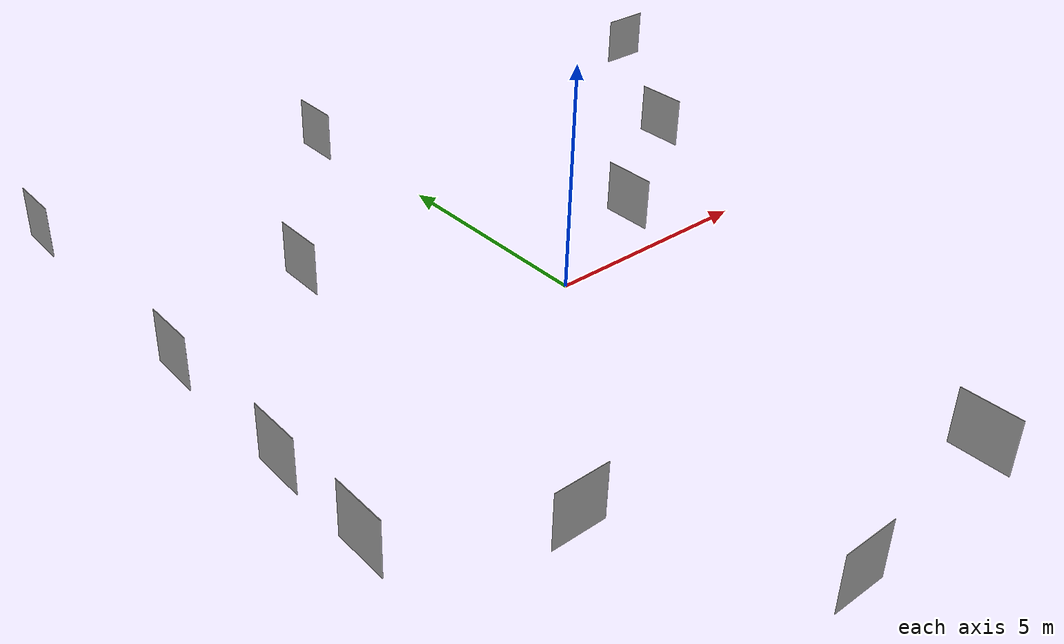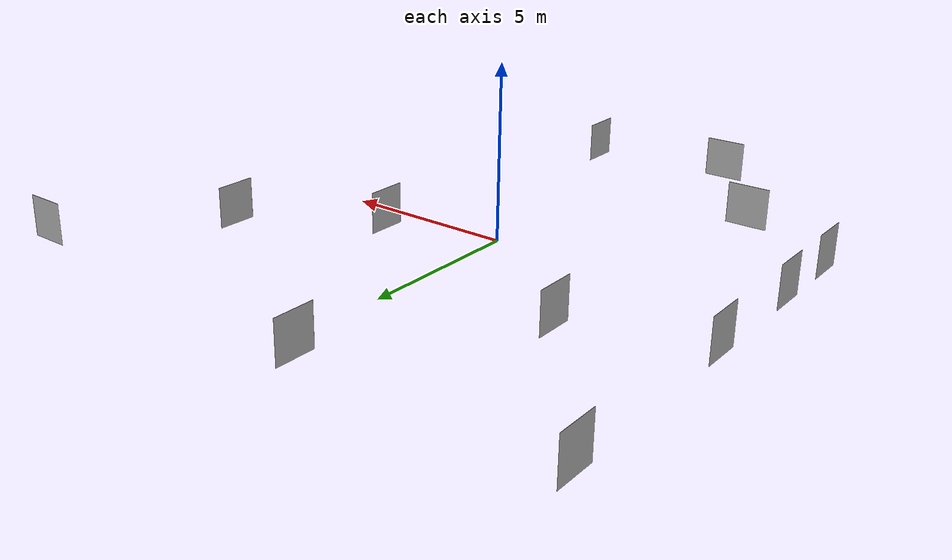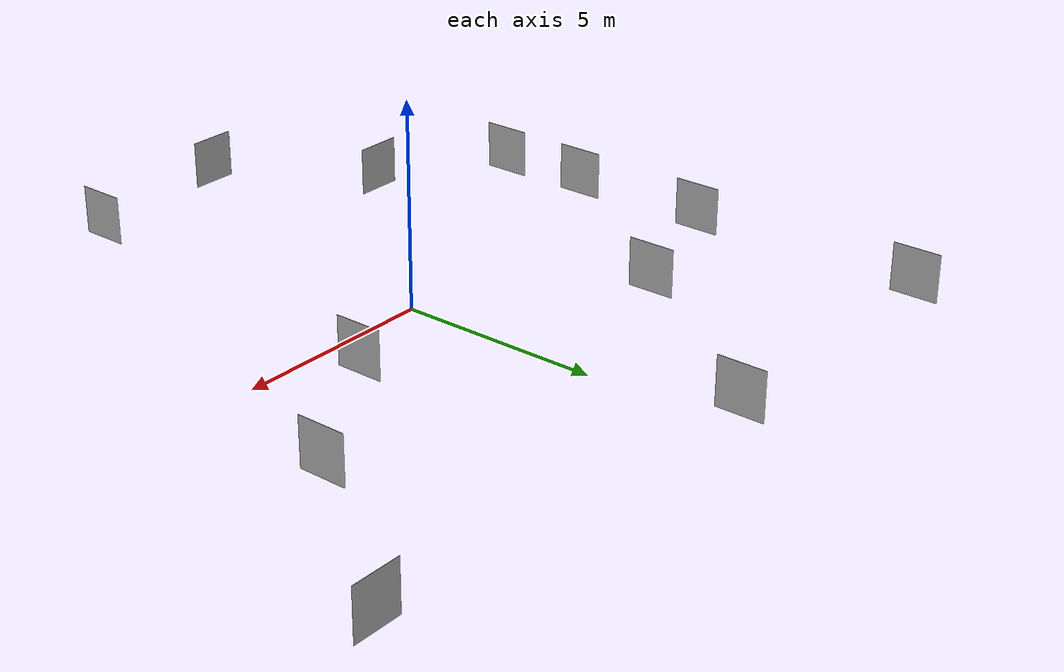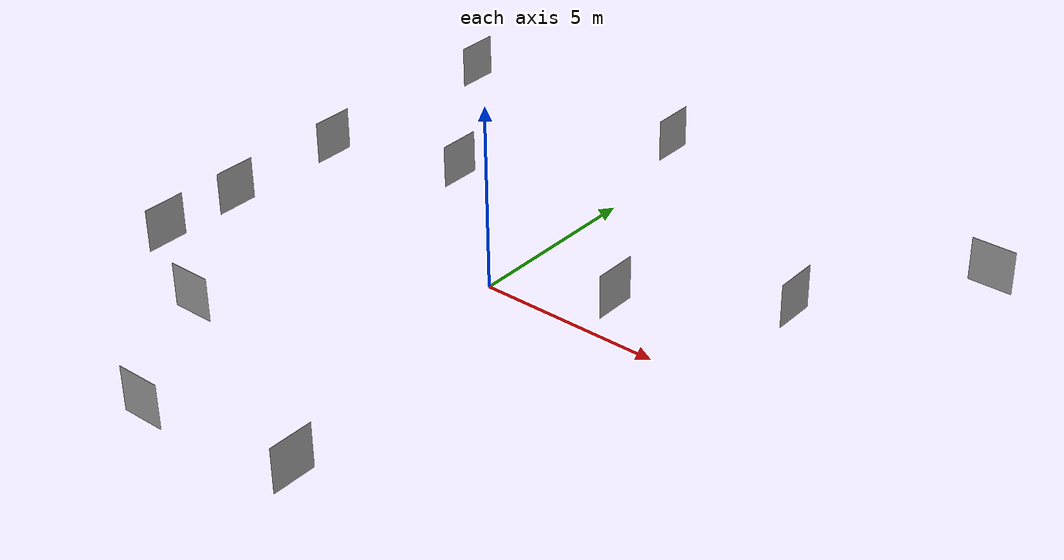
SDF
<sdf version="1.4">
 <world name="default">
  <scene><ambient>0.5 0.5 0.5 1</ambient><background>0.5 0.5 0.5 1</background><shadows>false</shadows></scene>
  <physics type="ode">
   <gravity>0 0 -9.81</gravity>
   <ode>
    <solver><type>quick</type><iters>10</iters><sor>1.3</sor></solver>
    <constraints>
     <cfm>0.0</cfm>
     <erp>0.2</erp>
     <contact_max_correcting_vel>100.0</contact_max_correcting_vel>
     <contact_surface_layer>0.001</contact_surface_layer>
    </constraints>
   </ode>
   <real_time_update_rate>1000</real_time_update_rate>
   <max_step_size>0.001</max_step_size>
  </physics>
  <light type="directional" name="directional_light_1">
   <cast_shadows>false</cast_shadows>
   <pose>0 0 30 0.1 0.1 0</pose>
   <diffuse>1.0 1.0 1.0 1</diffuse>
   <specular>.1 .1 .1 1</specular>
   <attenuation><range>300</range></attenuation>
   <direction>0.1 0.1 -1</direction>
  </light>
  <model name="small_wall_qr_2">
   <static>true</static>
   <link name="small_wall_qr_2_link">
    <pose>-7.2 8.4 0 0 0 -4.71239</pose>
    <collision name="small_wall_qr_2_collision">
     <geometry><mesh><uri>file://small_wall_qr_101.dae</uri><scale>1 1 1</scale></mesh></geometry>
    </collision>
    <visual name="small_wall_qr_2_visual">
     <cast_shadows>false</cast_shadows>
     <geometry><mesh><uri>file://small_wall_qr_101.dae</uri><scale>1 1 1</scale></mesh></geometry>
    </visual>
   </link>
  </model>
  <model name="small_wall_qr_4">
   <static>true</static>
   <link name="small_wall_qr_4_link">
    <pose>-1.2 8.4 0 0 0 -1.5708</pose>
    <collision name="small_wall_qr_4_collision">
     <geometry><mesh><uri>file://small_wall_qr_102.dae</uri><scale>1 1 1</scale></mesh></geometry>
    </collision>
    <visual name="small_wall_qr_4_visual">
     <cast_shadows>false</cast_shadows>
     <geometry><mesh><uri>file://small_wall_qr_102.dae</uri><scale>1 1 1</scale></mesh></geometry>
    </visual>
   </link>
  </model>
  <model name="small_wall_qr_6">
   <static>true</static>
   <link name="small_wall_qr_6_link">
    <pose>9.6 7.2 0 0 0 0</pose>
    <collision name="small_wall_qr_6_collision">
     <geometry><mesh><uri>file://small_wall_qr_103.dae</uri><scale>1 1 1</scale></mesh></geometry>
    </collision>
    <visual name="small_wall_qr_6_visual">
     <cast_shadows>false</cast_shadows>
     <geometry><mesh><uri>file://small_wall_qr_103.dae</uri><scale>1 1 1</scale></mesh></geometry>
    </visual>
   </link>
  </model>
  <model name="small_wall_qr_8">
   <static>true</static>
   <link name="small_wall_qr_8_link">
    <pose>6 3.6 0 0 0 -1.5708</pose>
    <collision name="small_wall_qr_8_collision">
     <geometry><mesh><uri>file://small_wall_qr_104.dae</uri><scale>1 1 1</scale></mesh></geometry>
    </collision>
    <visual name="small_wall_qr_8_visual">
     <cast_shadows>false</cast_shadows>
     <geometry><mesh><uri>file://small_wall_qr_104.dae</uri><scale>1 1 1</scale></mesh></geometry>
    </visual>
   </link>
  </model>
  <model name="small_wall_qr_10">
   <static>true</static>
   <link name="small_wall_qr_10_link">
    <pose>3.6 1.2 0 0 0 -4.71239</pose>
    <collision name="small_wall_qr_10_collision">
     <geometry><mesh><uri>file://small_wall_qr_105.dae</uri><scale>1 1 1</scale></mesh></geometry>
    </collision>
    <visual name="small_wall_qr_10_visual">
     <cast_shadows>false</cast_shadows>
     <geometry><mesh><uri>file://small_wall_qr_105.dae</uri><scale>1 1 1</scale></mesh></geometry>
    </visual>
   </link>
  </model>
  <model name="small_wall_qr_16">
   <static>true</static>
   <link name="small_wall_qr_16_link">
    <pose>1.2 -8.4 0 0 0 -1.5708</pose>
    <collision name="small_wall_qr_16_collision">
     <geometry><mesh><uri>file://small_wall_qr_106.dae</uri><scale>1 1 1</scale></mesh></geometry>
    </collision>
    <visual name="small_wall_qr_16_visual">
     <cast_shadows>false</cast_shadows>
     <geometry><mesh><uri>file://small_wall_qr_106.dae</uri><scale>1 1 1</scale></mesh></geometry>
    </visual>
   </link>
  </model>
  <model name="small_wall_qr_18">
   <static>true</static>
   <link name="small_wall_qr_18_link">
    <pose>-2.4 -9.6 0 0 0 0</pose>
    <collision name="small_wall_qr_18_collision">
     <geometry><mesh><uri>file://small_wall_qr_107.dae</uri><scale>1 1 1</scale></mesh></geometry>
    </collision>
    <visual name="small_wall_qr_18_visual">
     <cast_shadows>false</cast_shadows>
     <geometry><mesh><uri>file://small_wall_qr_107.dae</uri><scale>1 1 1</scale></mesh></geometry>
    </visual>
   </link>
  </model>
  <model name="small_wall_qr_20">
   <static>true</static>
   <link name="small_wall_qr_20_link">
    <pose>-7.2 -3.6 0 0 0 -4.71239</pose>
    <collision name="small_wall_qr_20_collision">
     <geometry><mesh><uri>file://small_wall_qr_108.dae</uri><scale>1 1 1</scale></mesh></geometry>
    </collision>
    <visual name="small_wall_qr_20_visual">
     <cast_shadows>false</cast_shadows>
     <geometry><mesh><uri>file://small_wall_qr_108.dae</uri><scale>1 1 1</scale></mesh></geometry>
    </visual>
   </link>
  </model>
  <model name="small_wall_qr_21">
   <static>true</static>
   <link name="small_wall_qr_21_link">
    <pose>-4.8 -4.8 0 0 0 -3.14159</pose>
    <collision name="small_wall_qr_21_collision">
     <geometry><mesh><uri>file://small_wall_qr_109.dae</uri><scale>1 1 1</scale></mesh></geometry>
    </collision>
    <visual name="small_wall_qr_21_visual">
     <cast_shadows>false</cast_shadows>
     <geometry><mesh><uri>file://small_wall_qr_109.dae</uri><scale>1 1 1</scale></mesh></geometry>
    </visual>
   </link>
  </model>
  <model name="small_wall_qr_23">
   <static>true</static>
   <link name="small_wall_qr_23_link">
    <pose>-7.2 -1.2 0 0 0 -4.71239</pose>
    <collision name="small_wall_qr_23_collision">
     <geometry><mesh><uri>file://small_wall_qr_110.dae</uri><scale>1 1 1</scale></mesh></geometry>
    </collision>
    <visual name="small_wall_qr_23_visual">
     <cast_shadows>false</cast_shadows>
     <geometry><mesh><uri>file://small_wall_qr_110.dae</uri><scale>1 1 1</scale></mesh></geometry>
    </visual>
   </link>
  </model>
  <model name="small_wall_qr_25">
   <static>true</static>
   <link name="small_wall_qr_25_link">
    <pose>-4.8 3.6 0 0 0 -1.5708</pose>
    <collision name="small_wall_qr_25_collision">
     <geometry><mesh><uri>file://small_wall_qr_111.dae</uri><scale>1 1 1</scale></mesh></geometry>
    </collision>
    <visual name="small_wall_qr_25_visual">
     <cast_shadows>false</cast_shadows>
     <geometry><mesh><uri>file://small_wall_qr_111.dae</uri><scale>1 1 1</scale></mesh></geometry>
    </visual>
   </link>
  </model>
  <model name="small_wall_qr_27">
   <static>true</static>
   <link name="small_wall_qr_27_link">
    <pose>-7.2 2.4 0 0 0 -4.71239</pose>
    <collision name="small_wall_qr_27_collision">
     <geometry><mesh><uri>file://small_wall_qr_112.dae</uri><scale>1 1 1</scale></mesh></geometry>
    </collision>
    <visual name="small_wall_qr_27_visual">
     <cast_shadows>false</cast_shadows>
     <geometry><mesh><uri>file://small_wall_qr_112.dae</uri><scale>1 1 1</scale></mesh></geometry>
    </visual>
   </link>
  </model>
 </world>
</sdf>
